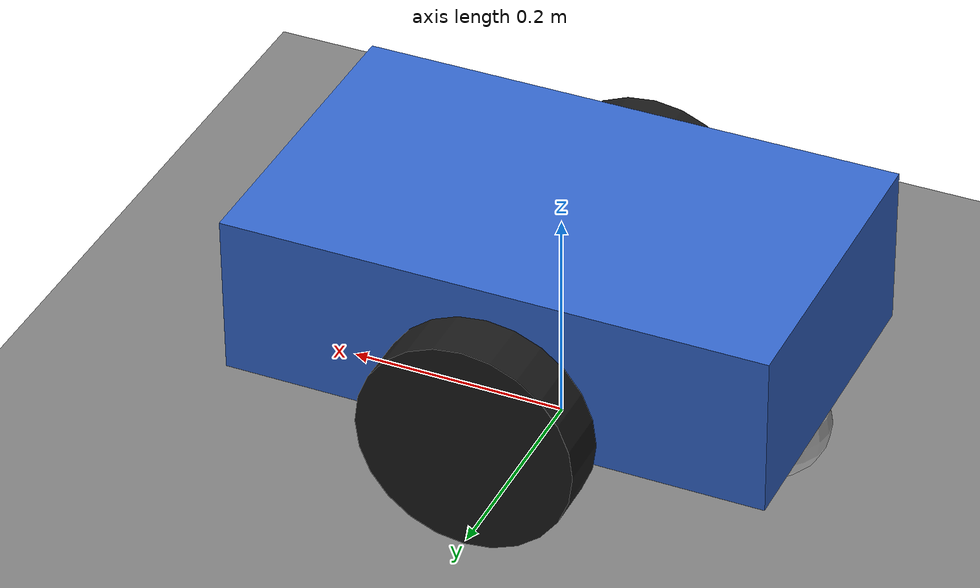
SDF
<?xml version="1.0" ?>
<sdf version="1.10">
  <world name="fusion_world">

    <physics name="1ms" type="ignored">
      <max_step_size>0.001</max_step_size>
      <real_time_factor>1.0</real_time_factor>
    </physics>

    <plugin filename="gz-sim-physics-system"
            name="gz::sim::systems::Physics"/>
    <plugin filename="gz-sim-scene-broadcaster-system"
            name="gz::sim::systems::SceneBroadcaster"/>
    <plugin filename="gz-sim-user-commands-system"
            name="gz::sim::systems::UserCommands"/>
    <plugin filename="gz-sim-sensors-system"
            name="gz::sim::systems::Sensors">
      <render_engine>ogre2</render_engine>
    </plugin>
    <plugin filename="gz-sim-imu-system"
            name="gz::sim::systems::Imu"/>

    <light type="directional" name="sun">
      <cast_shadows>true</cast_shadows>
      <pose>0 0 10 0 0 0</pose>
      <diffuse>0.8 0.8 0.8 1</diffuse>
      <specular>0.2 0.2 0.2 1</specular>
      <direction>-0.5 0.1 -0.9</direction>
    </light>

    <model name="ground_plane">
      <static>true</static>
      <link name="link">
        <collision name="collision">
          <geometry>
            <plane>
              <normal>0 0 1</normal>
              <size>100 100</size>
            </plane>
          </geometry>
        </collision>
        <visual name="visual">
          <geometry>
            <plane>
              <normal>0 0 1</normal>
              <size>100 100</size>
            </plane>
          </geometry>
          <material>
            <ambient>0.3 0.3 0.3 1</ambient>
            <diffuse>0.5 0.5 0.5 1</diffuse>
            <specular>0.1 0.1 0.1 1</specular>
          </material>
        </visual>
      </link>
    </model>

    <model name="fusion_bot">
      <pose>0 0 0.15 0 0 0</pose>

      <link name="base_link">
        <inertial>
          <mass>5.0</mass>
          <inertia>
            <ixx>0.10</ixx>
            <iyy>0.15</iyy>
            <izz>0.20</izz>
            <ixy>0</ixy>
            <ixz>0</ixz>
            <iyz>0</iyz>
          </inertia>
        </inertial>
        <collision name="collision">
          <geometry>
            <box><size>0.5 0.3 0.15</size></box>
          </geometry>
        </collision>
        <visual name="visual">
          <geometry>
            <box><size>0.5 0.3 0.15</size></box>
          </geometry>
          <material>
            <ambient>0.2 0.4 0.8 1</ambient>
            <diffuse>0.2 0.4 0.8 1</diffuse>
          </material>
        </visual>

        <!-- IMU sensor: publishes gz.msgs.IMU on /imu -->
        <sensor name="imu_sensor" type="imu">
          <topic>imu</topic>
          <update_rate>50</update_rate>
          <always_on>true</always_on>
          <imu>
            <linear_acceleration>
              <x><noise type="gaussian"><mean>0</mean><stddev>0.05</stddev></noise></x>
              <y><noise type="gaussian"><mean>0</mean><stddev>0.05</stddev></noise></y>
              <z><noise type="gaussian"><mean>0</mean><stddev>0.05</stddev></noise></z>
            </linear_acceleration>
          </imu>
        </sensor>
      </link>

      <link name="left_wheel">
        <pose>0 0.18 -0.05 -1.5707 0 0</pose>
        <inertial>
          <mass>0.5</mass>
          <inertia>
            <ixx>0.001</ixx><iyy>0.001</iyy><izz>0.001</izz>
            <ixy>0</ixy><ixz>0</ixz><iyz>0</iyz>
          </inertia>
        </inertial>
        <collision name="collision">
          <geometry><cylinder><radius>0.1</radius><length>0.05</length></cylinder></geometry>
        </collision>
        <visual name="visual">
          <geometry><cylinder><radius>0.1</radius><length>0.05</length></cylinder></geometry>
          <material><ambient>0.1 0.1 0.1 1</ambient><diffuse>0.1 0.1 0.1 1</diffuse></material>
        </visual>
      </link>

      <link name="right_wheel">
        <pose>0 -0.18 -0.05 -1.5707 0 0</pose>
        <inertial>
          <mass>0.5</mass>
          <inertia>
            <ixx>0.001</ixx><iyy>0.001</iyy><izz>0.001</izz>
            <ixy>0</ixy><ixz>0</ixz><iyz>0</iyz>
          </inertia>
        </inertial>
        <collision name="collision">
          <geometry><cylinder><radius>0.1</radius><length>0.05</length></cylinder></geometry>
        </collision>
        <visual name="visual">
          <geometry><cylinder><radius>0.1</radius><length>0.05</length></cylinder></geometry>
          <material><ambient>0.1 0.1 0.1 1</ambient><diffuse>0.1 0.1 0.1 1</diffuse></material>
        </visual>
      </link>

      <link name="caster">
        <pose>-0.2 0 -0.1 0 0 0</pose>
        <inertial>
          <mass>0.1</mass>
          <inertia>
            <ixx>0.0001</ixx><iyy>0.0001</iyy><izz>0.0001</izz>
            <ixy>0</ixy><ixz>0</ixz><iyz>0</iyz>
          </inertia>
        </inertial>
        <collision name="collision">
          <geometry><sphere><radius>0.05</radius></sphere></geometry>
        </collision>
        <visual name="visual">
          <geometry><sphere><radius>0.05</radius></sphere></geometry>
        </visual>
      </link>

      <joint name="left_wheel_joint" type="revolute">
        <parent>base_link</parent>
        <child>left_wheel</child>
        <axis>
          <xyz>0 0 1</xyz>
          <limit><lower>-1e16</lower><upper>1e16</upper></limit>
        </axis>
      </joint>

      <joint name="right_wheel_joint" type="revolute">
        <parent>base_link</parent>
        <child>right_wheel</child>
        <axis>
          <xyz>0 0 1</xyz>
          <limit><lower>-1e16</lower><upper>1e16</upper></limit>
        </axis>
      </joint>

      <joint name="caster_joint" type="ball">
        <parent>base_link</parent>
        <child>caster</child>
      </joint>

      <!-- Differential drive: subscribes gz.msgs.Twist on cmd_vel -->
      <plugin filename="gz-sim-diff-drive-system"
              name="gz::sim::systems::DiffDrive">
        <left_joint>left_wheel_joint</left_joint>
        <right_joint>right_wheel_joint</right_joint>
        <wheel_separation>0.36</wheel_separation>
        <wheel_radius>0.1</wheel_radius>
        <topic>cmd_vel</topic>
        <odom_topic>odometry</odom_topic>
        <frame_id>odom</frame_id>
        <child_frame_id>base_link</child_frame_id>
      </plugin>

      <!-- Odometry publisher: publishes gz.msgs.Odometry on /model/fusion_bot/odometry -->
      <plugin filename="gz-sim-odometry-publisher-system"
              name="gz::sim::systems::OdometryPublisher">
        <dimensions>2</dimensions>
        <odom_frame>odom</odom_frame>
        <robot_base_frame>base_link</robot_base_frame>
        <odom_publish_frequency>10</odom_publish_frequency>
      </plugin>
    </model>

  </world>
</sdf>
